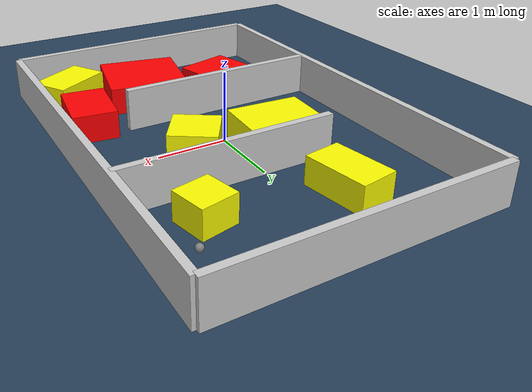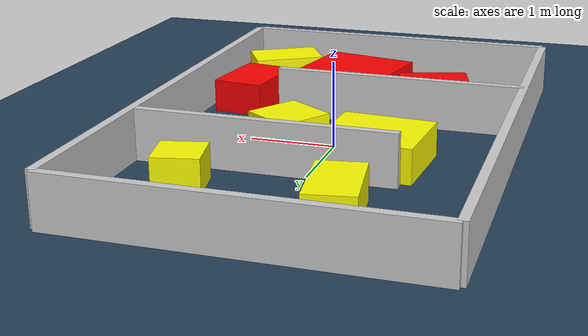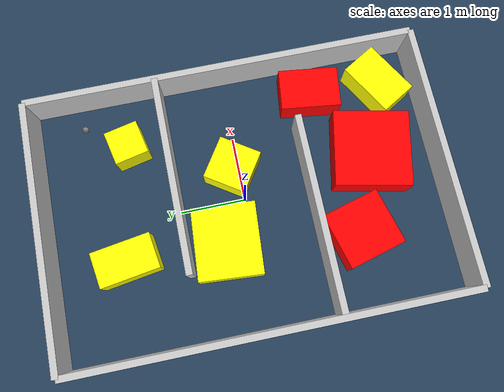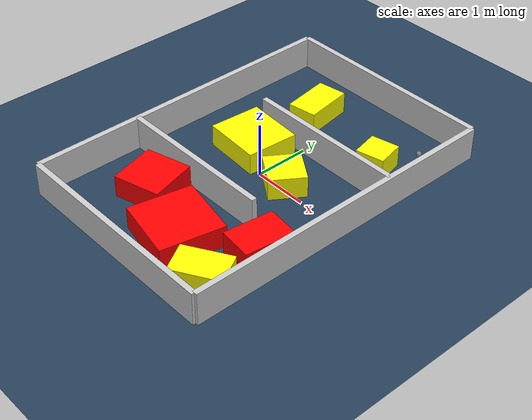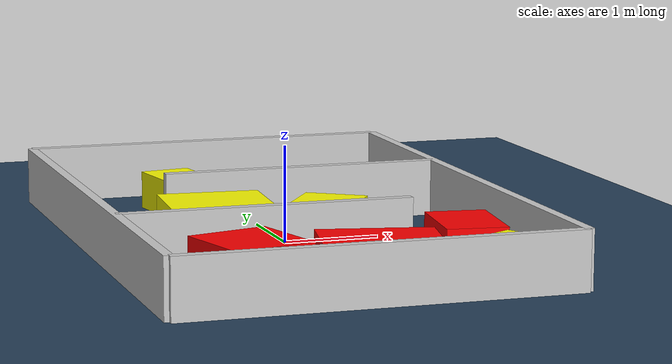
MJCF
<?xml version="1.0" ?>
<mujoco model="generated_environment">
  <option timestep="0.01" integrator="RK4" cone="elliptic"/>
  <default>
    <geom density="1"/>
  </default>
  <asset>
    <texture builtin="gradient" height="3072" rgb1="0.3 0.5 0.7" rgb2="0 0 0" type="skybox" width="512"/>
    <texture builtin="checker" height="300" mark="edge" markrgb="0.8 0.8 0.8" name="groundplane" rgb1="0.2 0.3 0.4" rgb2="0.1 0.2 0.3" type="2d" width="300"/>
    <material name="groundplane" reflectance="0.2" texrepeat="5 5" texture="groundplane" texuniform="true"/>
    <material name="robot" rgba="0.0 1.0 0.0 1"/>
  </asset>
  <worldbody>
    <light dir="0 0 -1" directional="true" pos="0 0 1.5"/>
    <geom condim="4" friction="1.0 0.005 0.001" material="groundplane" name="floor" size="0 0 0.05" type="plane"/>
    <body name="walls">
      <geom name="wall_1" condim="4" pos="-2.0 0.0 0.3" rgba="0.800000011920929 0.800000011920929 0.800000011920929 1.0" size="0.05 3.0 0.3" type="box"/>
      <geom name="wall_2" condim="4" pos="2.0 0.0 0.3" rgba="0.800000011920929 0.800000011920929 0.800000011920929 1.0" size="0.05 3.0 0.3" type="box"/>
      <geom name="wall_3" condim="4" pos="0.0 -3.0 0.3" rgba="0.800000011920929 0.800000011920929 0.800000011920929 1.0" size="2.0 0.05 0.3" type="box"/>
      <geom name="wall_4" condim="4" pos="0.0 3.0 0.3" rgba="0.800000011920929 0.800000011920929 0.800000011920929 1.0" size="2.0 0.05 0.3" type="box"/>
      <geom name="wall_5" condim="4" pos="-0.5 -1.0 0.3" rgba="0.800000011920929 0.800000011920929 0.800000011920929 1.0" size="1.5 0.05 0.3" type="box"/>
      <geom name="wall_6" condim="4" pos="0.5 1.0 0.3" rgba="0.800000011920929 0.800000011920929 0.800000011920929 1.0" size="1.5 0.05 0.3" type="box"/>
    </body>
    <body name="robot">
      <joint name="joint_x" type="slide" pos="0 0 0" axis="1 0 0"/>
      <joint name="joint_y" type="slide" pos="0 0 0" axis="0 1 0"/>
      <geom name="robot" type="sphere" pos="1.5516216454165876 2.2130777596287774 0.2" size="0.05" mass="5." friction="1.0 0.005 0.0001" condim="4"/>
      <site name="sensor_ball"/>
    </body>
    <body name="obstacle_1_movable">
      <geom name="obstacle_1_movable" condim="4" pos="1.4042050985059236 -2.3929951376995184 0.2" euler="0 0 300.48078308762956" friction="1.0 0.005 0.001" rgba="1 1 0 1" size="0.2903421886519927 0.4482514428686031 0.2" type="box" mass="0.1"/>
      <joint type="free"/>
    </body>
    <body name="obstacle_2_movable">
      <geom name="obstacle_2_movable" condim="4" pos="1.1589447662307961 1.6017706023046263 0.2" euler="0 0 102.35016055623495" friction="1.0 0.005 0.001" rgba="1 1 0 1" size="0.25922489114979497 0.26085759790516516 0.2" type="box" mass="0.1"/>
      <joint type="free"/>
    </body>
    <body name="obstacle_3_static">
      <geom name="obstacle_3_static" condim="4" pos="-0.8329403807184137 -1.5923459594933576 0.2" euler="0 0 15.256861985865351" friction="1.0 0.005 0.001" rgba="1 0 0 1" size="0.432764752854506 0.4440598739129315 0.2" type="box"/>
    </body>
    <body name="obstacle_4_static">
      <geom name="obstacle_4_static" condim="4" pos="0.33285028926332316 -2.020825111370107 0.2" euler="0 0 78.40484343432324" friction="1.0 0.005 0.001" rgba="1 0 0 1" size="0.5769397518168532 0.5856523731697505 0.2" type="box"/>
    </body>
    <body name="obstacle_5_movable">
      <geom name="obstacle_5_movable" condim="4" pos="-0.5891032215679997 1.8899679598329024 0.2" euler="0 0 8.725694624096128" friction="1.0 0.005 0.001" rgba="1 1 0 1" size="0.27131553891045257 0.45182093970828646 0.2" type="box" mass="0.1"/>
      <joint type="free"/>
    </body>
    <body name="obstacle_6_movable">
      <geom name="obstacle_6_movable" condim="4" pos="-0.6101485007902249 0.3982233389448173 0.2" euler="0 0 265.8796671036662" friction="1.0 0.005 0.001" rgba="1 1 0 1" size="0.47981480130148674 0.5387662402363247 0.2" type="box" mass="0.1"/>
      <joint type="free"/>
    </body>
    <body name="obstacle_7_movable">
      <geom name="obstacle_7_movable" condim="4" pos="0.5033981599950526 0.09809044499188557 0.2" euler="0 0 146.45405838714402" friction="1.0 0.005 0.001" rgba="1 1 0 1" size="0.3326873303693102 0.32915835916468517 0.2" type="box" mass="0.1"/>
      <joint type="free"/>
    </body>
    <body name="obstacle_8_static">
      <geom name="obstacle_8_static" condim="4" pos="1.4612741756044179 -1.3081947849921063 0.2" euler="0 0 352.8824170135436" friction="1.0 0.005 0.001" rgba="1 0 0 1" size="0.31272610839968906 0.45611950249785377 0.2" type="box"/>
    </body>
  </worldbody>
  <actuator>
    <motor name="actuator_x" joint="joint_x" gear="1" ctrlrange="-1 1"/>
    <motor name="actuator_y" joint="joint_y" gear="1" ctrlrange="-1 1"/>
  </actuator>
</mujoco>
